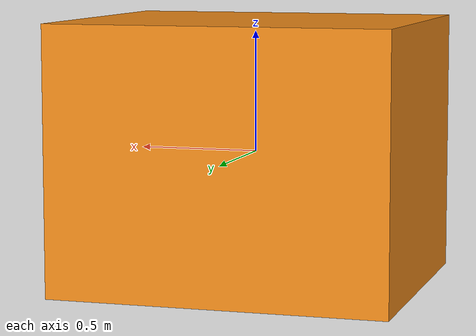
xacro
<?xml version='1.0'?>

<robot name="myrobot" xmlns:xacro="http://www.ros.org/wiki/xacro">

  <xacro:property name="cameraSize" value="0.05"/>
  <xacro:property name="cameraMass" value="0.1"/>

  <xacro:include filename="$(find mybot_description)/urdf/box_test.gazebo" />

  <link name='chassis'>
    <pose>0 0 0.0 0 0 0</pose>

    <inertial>
      <mass value="15.0"/>
      <origin xyz="0.0 0 0.1" rpy=" 0 0 0"/>
      <inertia
          ixx="0.1" ixy="0" ixz="0"
          iyy="0.1" iyz="0"
          izz="0.1"
      />
    </inertial>

    <collision name='collision'>
      <geometry>
        <box size="1.4 1.2 .1"/>
      </geometry>
    </collision>

    <visual name='chassis_visual'>
      <origin xyz="0 0 0" rpy=" 0 0 0"/>
      <geometry>
        <box size="1.4 1.2 1.1"/>
      </geometry>
    </visual>
  </link>

  <joint name="imu_joint" type="fixed">
    <axis xyz="1 0 0"/>
    <origin xyz="0 0 0.19"/>
    <parent link="chassis"/>
    <child link="imu_link"/>
  </joint>

  <link name="imu_link">
    <inertial>
      <mass value="0.001"/>
      <origin rpy="0 0 0" xyz="0 0 0"/>
      <inertia ixx="0.0001" ixy="0" ixz="0" iyy="0.000001" iyz="0" izz="0.0001"/>
    </inertial>
    <visual>
      <origin rpy="0 0 0" xyz="0 0 0"/>
      <geometry>
        <box size="0.1 0.1 0.1"/>
      </geometry>
    </visual>
    <collision>
      <origin rpy="0 0 0" xyz="0 0 0"/>
      <geometry>
        <box size=".001 .001 .001"/>
      </geometry>
    </collision>
  </link>
</robot>
